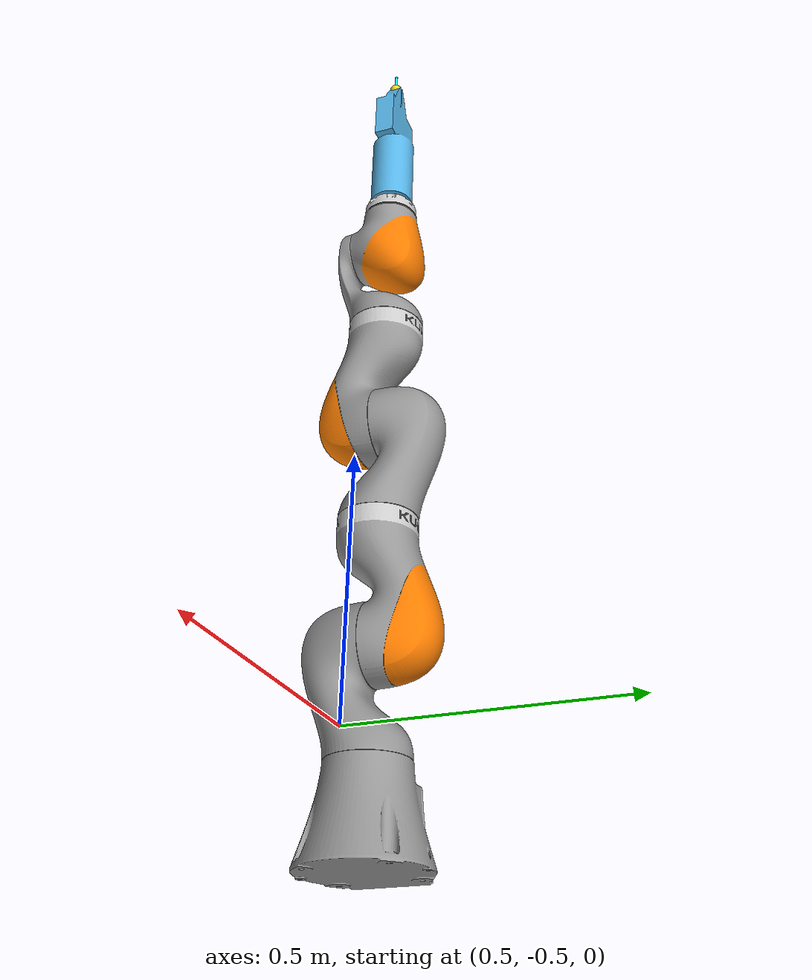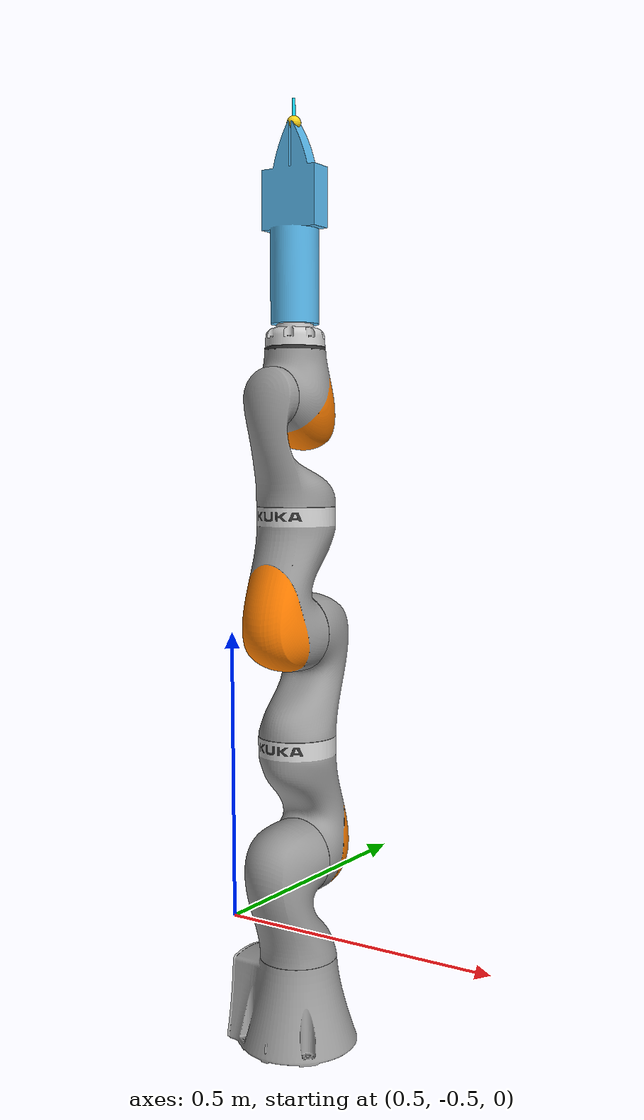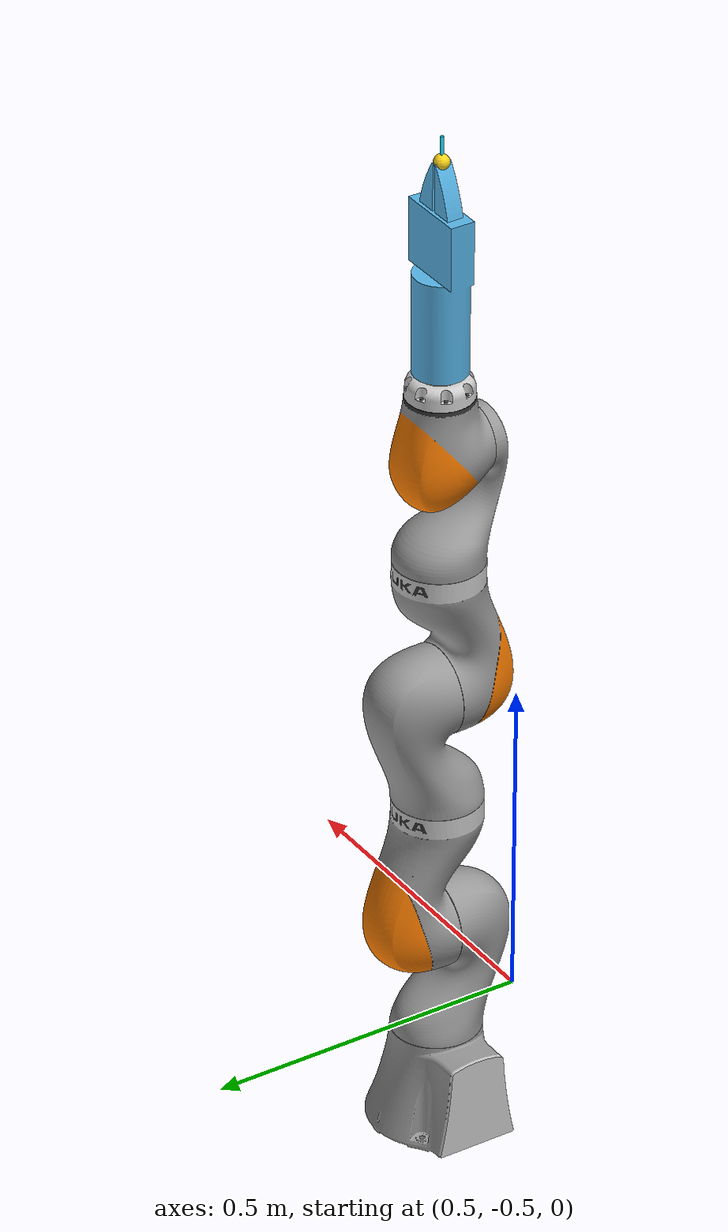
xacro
<?xml version="1.0"?>

<!-- top level -->
<robot name="iiwa7" xmlns:xacro="http://www.ros.org/wiki/xacro">

    <!-- include the lbr iiwa macro -->
    <xacro:include filename="$(find lbr_description)/urdf/iiwa7/iiwa7_description.xacro" />
    <xacro:include filename="$(find robotiq_description)/urdf/robotiq_2f_85_macro.urdf.xacro" />

    <xacro:arg name="robot_name" default="lbr" />
    <xacro:arg name="sim" default="true" />
    <xacro:arg name="use_fake_hardware" default="true" />

    <xacro:arg
        name="system_parameters_path"
        default="$(find lbr_ros2_control)/config/lbr_system_parameters.yaml" />

    <!-- fixed to world, see http://classic.gazebosim.org/tutorials?tut=ros_urdf&cat=connect_ros -->
    <link name="world" />

    <!-- joint between world and link_0 -->
    <joint name="world_joint" type="fixed">
        <parent link="world" />
        <child link="link_0" />

        <origin xyz="0.5754642 -0.4159573 -0.2417773" rpy="0.0 0.0 0.0"/>
    </joint>

    <!-- iiwa -->
    <xacro:iiwa7
        robot_name="$(arg robot_name)"
        sim="$(arg sim)"
        system_parameters_path="$(arg system_parameters_path)" />

    <!-- End Effector -->

    <link name="link_ee">
        <inertial>
            <origin rpy="1.57 0 1.57" xyz="0 0 0.055525" />
            <mass value="0.55" />
            <inertia ixx="0.0001" ixy="0.0" ixz="0.0" iyy="0.0001" iyz="0.0" izz="0.0001" />
        </inertial>
        <visual>
            <origin rpy="0 3.14 0" xyz="0.0 0.0 0.0" />
            <geometry>
                <mesh filename="../../meshes/iiwa7/visual/aniket_gripper.dae" scale="0.001 0.001 0.001"/>
            </geometry>
        </visual>
        <collision>
            <origin rpy="0 3.14 0" xyz="0.0 0.0 0.0" />
            <geometry>
                <mesh filename="../../meshes/iiwa7/collision/aniket_gripper.stl" scale="0.001 0.001 0.001"/>
            </geometry>
        </collision>
    </link>

    <joint name="joint_ee" type="fixed">
        <parent link="link_7"/>
        <child link="link_ee"/>
        <origin rpy="0 0 3.14" xyz="0 0 0.035"/>
    </joint>

    <!-- TCP Link -->
    <link name="link_tcp">
        <!-- Visual-only TCP marker: sphere marks the exact frame origin; cylinder shows local +Z. -->
        <visual>
            <origin rpy="0 0 0" xyz="0 0 0"/>
            <geometry>
                <sphere radius="0.012"/>
            </geometry>
            <material name="tcp_marker_yellow">
                <color rgba="1 0.85 0.1 1"/>
            </material>
        </visual>
        <visual>
            <origin rpy="0 0 0" xyz="0 0 0.02"/>
            <geometry>
                <cylinder length="0.04" radius="0.0025"/>
            </geometry>
            <material name="tcp_marker_cyan">
                <color rgba="0.1 0.9 1 1"/>
            </material>
        </visual>
    </link>

    <joint name="joint_tcp" type="fixed">
        <parent link="link_ee"/>
        <child link="link_tcp"/>
        <origin rpy="0 0 0" xyz="0.0 0.0 0.33149"/>
    </joint>
</robot>

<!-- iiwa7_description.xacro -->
<robot xmlns:xacro="http://www.ros.org/wiki/xacro">
    <!-- robot as extracted via https://github.com/syuntoku14/fusion2urdf -->
    <xacro:macro name="iiwa7"
        params="robot_name:=^|lbr sim:=^=true system_parameters_path:=^|'$(find lbr_ros2_control)/config/lbr_system_parameters.yaml'">

        <!-- includes -->
        <xacro:include filename="$(find lbr_description)/gazebo/lbr_gazebo.xacro" />
        <xacro:include filename="$(find lbr_ros2_control)/config/lbr_system_interface.xacro" />

        <!-- joint limits via yaml -->
        <xacro:property name="joint_limits_path"
            value="$(find lbr_description)/urdf/iiwa7/joint_limits.yaml" />
        <xacro:property name="joint_limits" value="${xacro.load_yaml(joint_limits_path)}" />

        <!-- constants -->
        <xacro:property name="PI" value="3.1415926535897931" />
        <xacro:property name="joint_damping" value="10.0" />
        <xacro:property name="joint_friction" value="0.1" />

        <!-- macros for simulation and real hardware -->
        <xacro:lbr_gazebo robot_name="${robot_name}" />
        <xacro:lbr_system_interface
            sim="${sim}"
            joint_limits="${joint_limits}"
            system_parameters_path="${system_parameters_path}"
            robot_name="${robot_name}"/>

        <link name="link_0">
            <inertial>
                <origin rpy="0 0 0" xyz="-0.012857 0.0 0.069964" />
                <mass value="4.855658" />
                <inertia ixx="0.017839" ixy="0.0" ixz="0.000781" iyy="0.022294" iyz="0.0"
                    izz="0.021334" />
            </inertial>
            <visual>
                <origin rpy="0 0 0" xyz="0 0 0" />
                <geometry>
                    <mesh filename="../../meshes/iiwa7/visual/link_0.dae" />
                </geometry>
            </visual>
            <collision>
                <origin rpy="0 0 0" xyz="0 0 0" />
                <geometry>
                    <mesh filename="../../meshes/iiwa7/collision/link_0.stl" />
                </geometry>
            </collision>
        </link>

        <joint name="A1" type="revolute">
            <origin rpy="0 0 0" xyz="0.0 0.0 0.1475" />
            <parent link="link_0" />
            <child link="link_1" />
            <axis xyz="0.0 0.0 1.0" />
            <limit
                effort="${joint_limits['A1']['effort']}"
                lower="${joint_limits['A1']['lower'] * PI / 180}"
                upper="${joint_limits['A1']['upper'] * PI / 180}"
                velocity="${joint_limits['A1']['velocity'] * PI / 180}" />
            <dynamics damping="${joint_damping}" friction="${joint_friction}" />
        </joint>

        <link name="link_1">
            <inertial>
                <origin rpy="0 0 0" xyz="0.0 -0.034819 0.123299" />
                <mass value="3.394011" />
                <inertia ixx="0.021383" ixy="0.0" ixz="0.0" iyy="0.020403" iyz="0.003797"
                    izz="0.007563" />
            </inertial>
            <visual>
                <origin rpy="0 0 0" xyz="0.0 0.0 -0.1475" />
                <geometry>
                    <mesh filename="../../meshes/iiwa7/visual/link_1.dae" />
                </geometry>
            </visual>
            <collision>
                <origin rpy="0 0 0" xyz="0.0 0.0 -0.1475" />
                <geometry>
                    <mesh filename="../../meshes/iiwa7/collision/link_1.stl" />
                </geometry>
            </collision>
        </link>

        <joint name="A2" type="revolute">
            <origin rpy="0 0 0" xyz="0.0 -0.0105 0.1925" />
            <parent link="link_1" />
            <child link="link_2" />
            <axis xyz="0.0 1.0 0.0" />
            <limit
                effort="${joint_limits['A2']['effort']}"
                lower="${joint_limits['A2']['lower'] * PI / 180}"
                upper="${joint_limits['A2']['upper'] * PI / 180}"
                velocity="${joint_limits['A2']['velocity'] * PI / 180}" />
            <dynamics damping="${joint_damping}" friction="${joint_friction}" />
        </joint>

        <link name="link_2">
            <inertial>
                <origin rpy="0 0 0" xyz="0.0 0.039793 0.086944" />
                <mass value="4.031991" />
                <inertia ixx="0.031697" ixy="0.0" ixz="0.0" iyy="0.03008" iyz="0.005889"
                    izz="0.009666" />
            </inertial>
            <visual>
                <origin rpy="0 0 0" xyz="0.0 0.0105 -0.34" />
                <geometry>
                    <mesh filename="../../meshes/iiwa7/visual/link_2.dae" />
                </geometry>
            </visual>
            <collision>
                <origin rpy="0 0 0" xyz="0.0 0.0105 -0.34" />
                <geometry>
                    <mesh filename="../../meshes/iiwa7/collision/link_2.stl" />
                </geometry>
            </collision>
        </link>

        <joint name="A3" type="revolute">
            <origin rpy="0 0 0" xyz="0.0 0.0105 0.2075" />
            <parent link="link_2" />
            <child link="link_3" />
            <axis xyz="0.0 0.0 1.0" />
            <limit
                effort="${joint_limits['A3']['effort']}"
                lower="${joint_limits['A3']['lower'] * PI / 180}"
                upper="${joint_limits['A3']['upper'] * PI / 180}"
                velocity="${joint_limits['A3']['velocity'] * PI / 180}" />
            <dynamics damping="${joint_damping}" friction="${joint_friction}" />
        </joint>

        <link name="link_3">
            <inertial>
                <origin rpy="0 0 0" xyz="0.0 0.034819 0.123299" />
                <mass value="3.394011" />
                <inertia ixx="0.021383" ixy="0.0" ixz="0.0" iyy="0.020403" iyz="-0.003797"
                    izz="0.007563" />
            </inertial>
            <visual>
                <origin rpy="0 0 0" xyz="0.0 0.0 -0.5475" />
                <geometry>
                    <mesh filename="../../meshes/iiwa7/visual/link_3.dae" />
                </geometry>
            </visual>
            <collision>
                <origin rpy="0 0 0" xyz="0.0 0.0 -0.5475" />
                <geometry>
                    <mesh filename="../../meshes/iiwa7/collision/link_3.stl" />
                </geometry>
            </collision>
        </link>

        <joint name="A4" type="revolute">
            <origin rpy="0 0 0" xyz="0.0 0.0105 0.1925" />
            <parent link="link_3" />
            <child link="link_4" />
            <axis xyz="0.0 -1.0 0.0" />
            <limit
                effort="${joint_limits['A4']['effort']}"
                lower="${joint_limits['A4']['lower'] * PI / 180}"
                upper="${joint_limits['A4']['upper'] * PI / 180}"
                velocity="${joint_limits['A4']['velocity'] * PI / 180}" />
            <dynamics damping="${joint_damping}" friction="${joint_friction}" />
        </joint>

        <link name="link_4">
            <inertial>
                <origin rpy="0 0 0" xyz="0.0 -0.039793 0.086944" />
                <mass value="4.031989" />
                <inertia ixx="0.031695" ixy="0.0" ixz="0.0" iyy="0.030079" iyz="-0.005889"
                    izz="0.009665" />
            </inertial>
            <visual>
                <origin rpy="0 0 0" xyz="0.0 -0.0105 -0.74" />
                <geometry>
                    <mesh filename="../../meshes/iiwa7/visual/link_4.dae" />
                </geometry>
            </visual>
            <collision>
                <origin rpy="0 0 0" xyz="0.0 -0.0105 -0.74" />
                <geometry>
                    <mesh filename="../../meshes/iiwa7/collision/link_4.stl" />
                </geometry>
            </collision>
        </link>

        <joint name="A5" type="revolute">
            <origin rpy="0 0 0" xyz="0.0 -0.0105 0.2075" />
            <parent link="link_4" />
            <child link="link_5" />
            <axis xyz="0.0 0.0 1.0" />
            <limit
                effort="${joint_limits['A5']['effort']}"
                lower="${joint_limits['A5']['lower'] * PI / 180}"
                upper="${joint_limits['A5']['upper'] * PI / 180}"
                velocity="${joint_limits['A5']['velocity'] * PI / 180}" />
            <dynamics damping="${joint_damping}" friction="${joint_friction}" />
        </joint>

        <link name="link_5">
            <inertial>
                <origin rpy="0 0 0" xyz="0.0 -0.029824 0.076267" />
                <mass value="1.529239" />
                <inertia ixx="0.008485" ixy="0.0" ixz="0.0" iyy="0.007136" iyz="0.002806"
                    izz="0.003848" />
            </inertial>
            <visual>
                <origin rpy="0 0 0" xyz="0.0 0.0 -0.9475" />
                <geometry>
                    <mesh filename="../../meshes/iiwa7/visual/link_5.dae" />
                </geometry>
            </visual>
            <collision>
                <origin rpy="0 0 0" xyz="0.0 0.0 -0.9475" />
                <geometry>
                    <mesh filename="../../meshes/iiwa7/collision/link_5.stl" />
                </geometry>
            </collision>
        </link>

        <joint name="A6" type="revolute">
            <origin rpy="0 0 0" xyz="0.0 -0.0707 0.1925" />
            <parent link="link_5" />
            <child link="link_6" />
            <axis xyz="0.0 1.0 0.0" />
            <limit
                effort="${joint_limits['A6']['effort']}"
                lower="${joint_limits['A6']['lower'] * PI / 180}"
                upper="${joint_limits['A6']['upper'] * PI / 180}"
                velocity="${joint_limits['A6']['velocity'] * PI / 180}" />
            <dynamics damping="${joint_damping}" friction="${joint_friction}" />
        </joint>

        <link name="link_6">
            <inertial>
                <origin rpy="0 0 0" xyz="0.0 0.07102 0.00495" />
                <mass value="2.403626" />
                <inertia ixx="0.007067" ixy="0.0" ixz="0.0" iyy="0.006804" iyz="0.000311"
                    izz="0.004629" />
            </inertial>
            <visual>
                <origin rpy="0 0 0" xyz="0.0 0.0707 -1.14" />
                <geometry>
                    <mesh filename="../../meshes/iiwa7/visual/link_6.dae" />
                </geometry>
            </visual>
            <collision>
                <origin rpy="0 0 0" xyz="0.0 0.0707 -1.14" />
                <geometry>
                    <mesh filename="../../meshes/iiwa7/collision/link_6.stl" />
                </geometry>
            </collision>
        </link>

        <joint name="A7" type="revolute">
            <origin rpy="0 0 0" xyz="0.0 0.0707 0.091" />
            <parent link="link_6" />
            <child link="link_7" />
            <axis xyz="0.0 0.0 1.0" />
            <limit
                effort="${joint_limits['A7']['effort']}"
                lower="${joint_limits['A7']['lower'] * PI / 180}"
                upper="${joint_limits['A7']['upper'] * PI / 180}"
                velocity="${joint_limits['A7']['velocity'] * PI / 180}" />
            <dynamics damping="${joint_damping}" friction="${joint_friction}" />
        </joint>

        <link name="link_7">
            <inertial>
                <origin rpy="0 0 0" xyz="3.0000e-06 -2.0000e-06 1.3782e-02" />
                <mass value="0.259474" />
                <inertia ixx="0.000171" ixy="0.0" ixz="0.0" iyy="0.000171" iyz="0.0" izz="0.000299" />
            </inertial>
            <visual>
                <origin rpy="0 0 0" xyz="0.0 0.0 -1.231" />
                <geometry>
                    <mesh filename="../../meshes/iiwa7/visual/link_7.dae" />
                </geometry>
            </visual>
            <collision>
                <origin rpy="0 0 0" xyz="0.0 0.0 -1.231" />
                <geometry>
                    <mesh filename="../../meshes/iiwa7/collision/link_7.stl" />
                </geometry>
            </collision>
        </link>

    </xacro:macro>
</robot>
